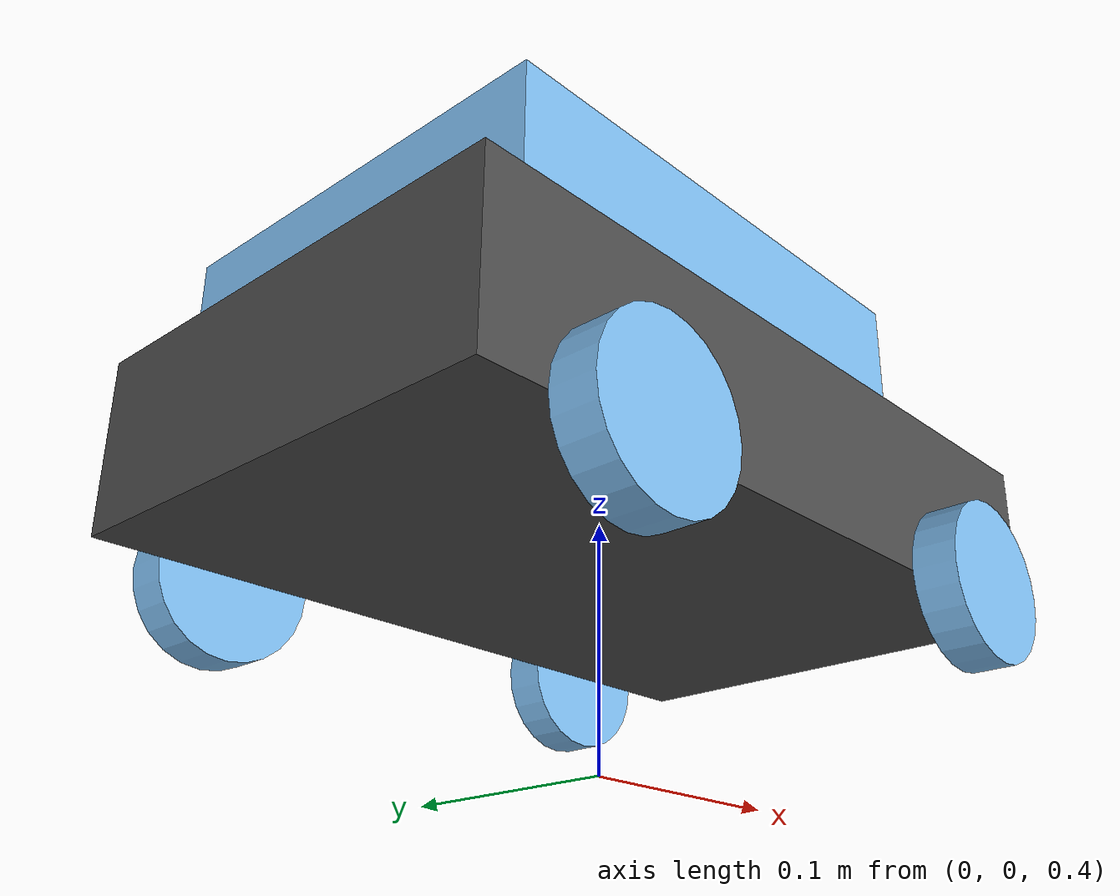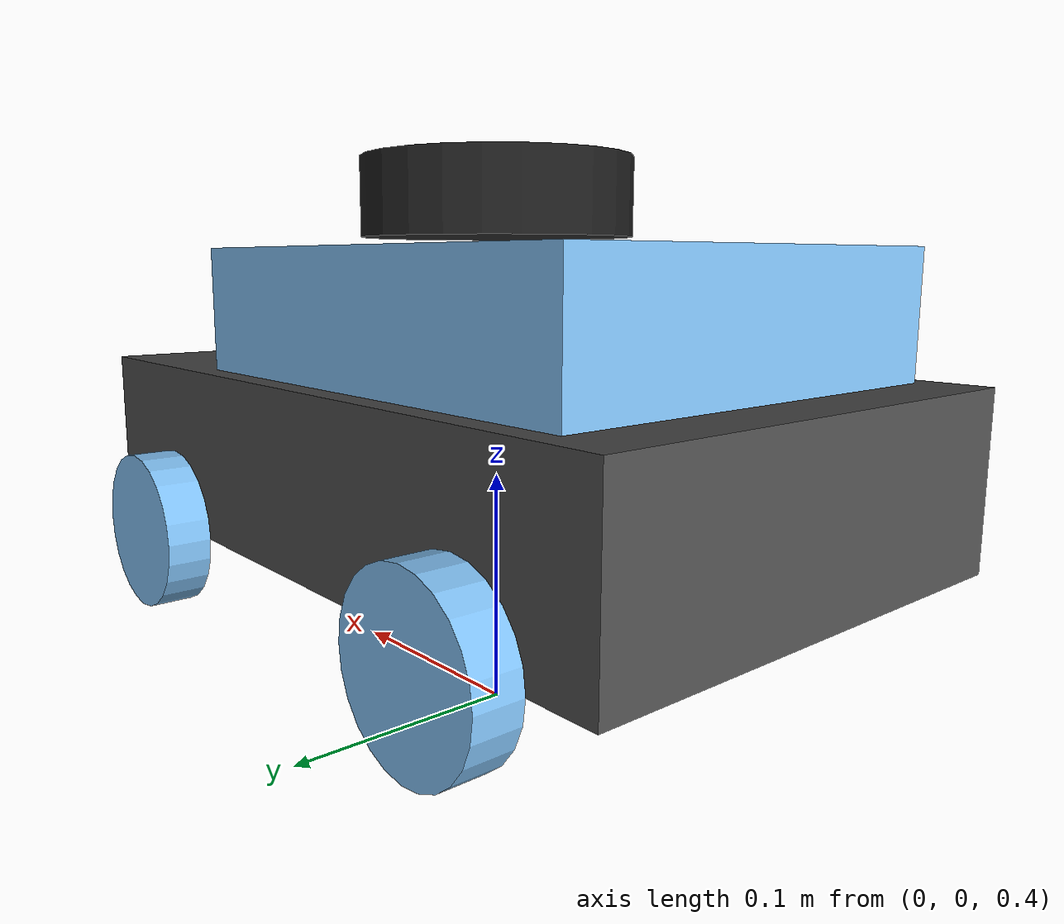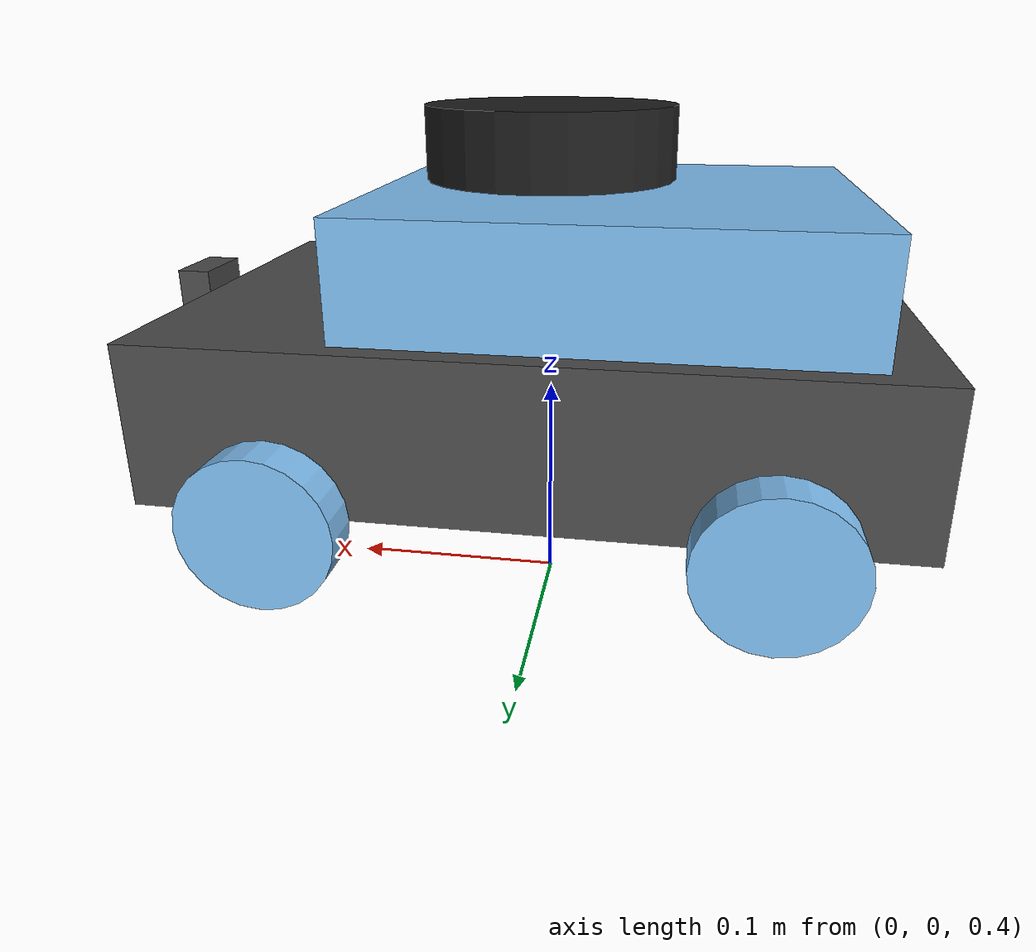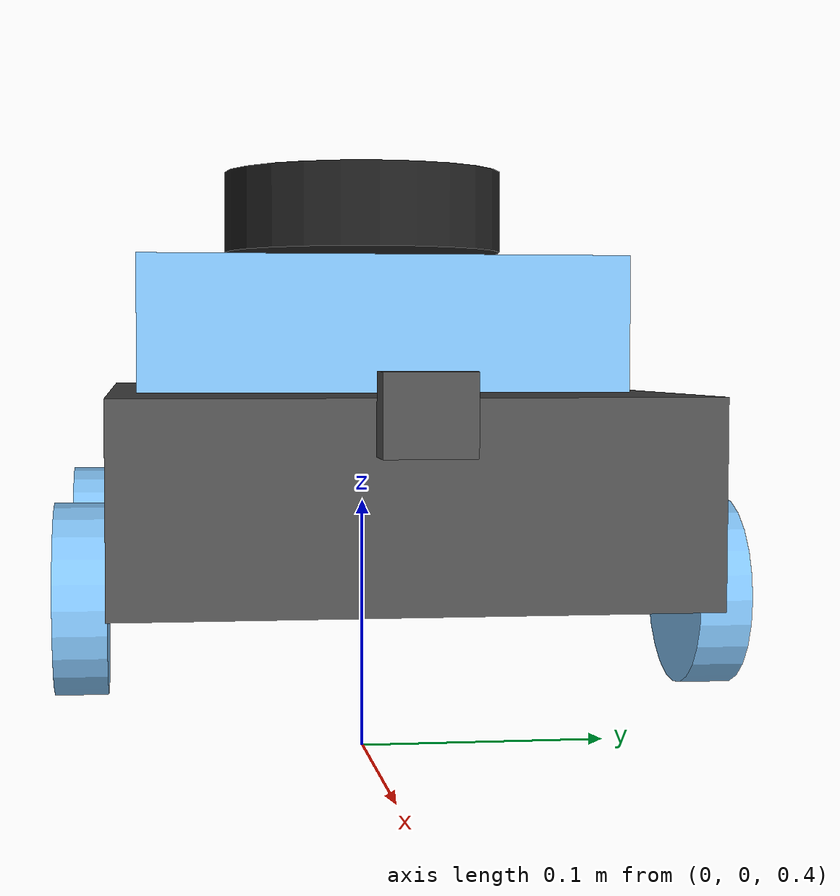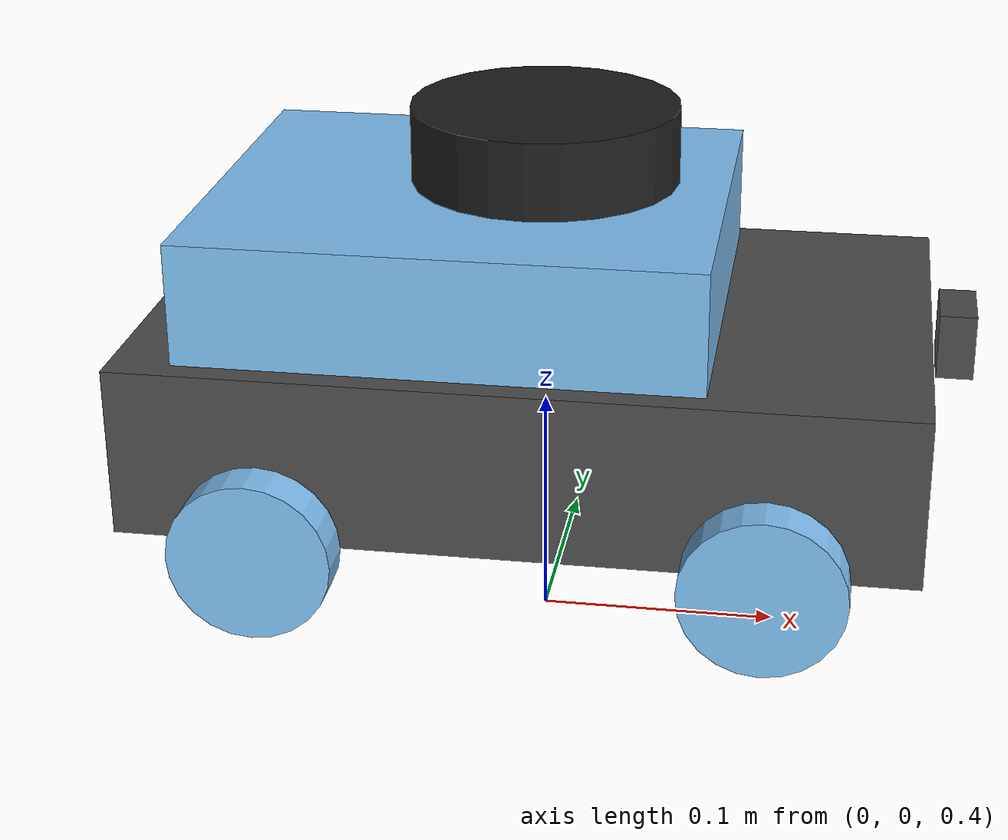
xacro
<?xml version="1.0" ?>
<robot name="fyp_robot" xmlns:xacro="http://www.ros.org/wiki/xacro">
    <xacro:include filename="$(find fyp_project)/urdf/fyp_robot.gazebo.xacro" />

    <link name="base_footprint"/>

    <joint name="base_footprint__base_link" type="fixed">
        <parent link="base_footprint"/>
        <child link="base_link"/>
        <origin xyz="0 0 0.01" rpy ="0 0 0" />
    </joint>

    <link name="base_link">
      <inertial>
        <mass value="1" />
        <origin xyz="0 0 0.5" rpy="0 0 0" />
        <inertia ixx="0.1" ixy="0" ixz="0" iyy="0.1" iyz="0" izz="0.1" />
      </inertial>
      <collision>
        <origin xyz="0 0 0.5" rpy="0 0 0"/>
        <geometry>
          <box size="0.32 0.2 0.07" />
        </geometry>
      </collision>
      <visual>
        <origin xyz="0 0 0.5" rpy="0 0 0" />
        <geometry>
          <box size="0.32 0.2 0.07"/>
        </geometry>
      </visual>
    </link>

    <joint name="base_link__top_chasis" type="fixed">
        <parent link="base_link"/>
        <child link="top_chasis"/>
        <origin xyz="-0.03 0 0.56" rpy ="0 0 0" />
    </joint>

    <link name="top_chasis">
      <inertial>
        <mass value="1" />
        <origin xyz="0 0 0" rpy="0 0 0" />
        <inertia ixx="0.1" ixy="0" ixz="0" iyy="0.1" iyz="0" izz="0.1" />
      </inertial>
      <collision>
        <origin xyz="0 0 0" rpy="0 0 0"/>
        <geometry>
          <box size="0.21 0.18 0.05" />
        </geometry>
      </collision>
      <visual>
        <origin xyz="0 0 0" rpy="0 0 0" />
        <geometry>
          <box size="0.21 0.18 0.05"/>
        </geometry>
      </visual>
    </link>

    <joint name="base_link__backleft_wheel" type="fixed">
        <!--axis xyz="0 1 0"/-->
        <origin rpy="0 0 0" xyz="-0.1 0.109 0.465" />
        <parent link="base_link"/>
        <child link="backleft_wheel_link"/>
    </joint>

    <link name="backleft_wheel_link">
      <inertial>
        <mass value="1" />
        <origin rpy="0 0 0" xyz="0 0 0" />
        <inertia ixx="0.004317" ixy="0" ixz="0" iyy="0.004317" iyz="0" izz="0.0081" />
      </inertial>
      <collision>
        <origin rpy="1.5707 0 0" xyz="0 0 0" />
        <geometry>
          <cylinder length="0.018" radius="0.033" />
        </geometry>
      </collision>
      <visual>
        <origin rpy="1.5707 0 0" xyz="0 0 0" />
        <geometry>
          <cylinder length="0.018" radius="0.033" />
        </geometry>
      </visual>
    </link>

    <joint name="base_link__backright_wheel" type="fixed">
        <!--axis xyz="0 1 0"/-->
        <origin rpy="0 0 0" xyz="-0.1 -0.109 0.465" />
        <parent link="base_link"/>
        <child link="backright_wheel_link"/>
    </joint>

    <link name="backright_wheel_link">
      <inertial>
        <mass value="1" />
        <origin rpy="0 0 0" xyz="0 0 0" />
        <inertia ixx="0.004317" ixy="0" ixz="0" iyy="0.004317" iyz="0" izz="0.0081" />
      </inertial>
      <collision>
        <origin rpy="1.5707 0 0" xyz="0 0 0" />
        <geometry>
          <cylinder length="0.018" radius="0.033" />
        </geometry>
      </collision>
      <visual>
        <origin rpy="1.5707 0 0" xyz="0 0 0" />
        <geometry>
          <cylinder length="0.018" radius="0.033" />
        </geometry>
      </visual>
    </link>

    <joint name="base_link__frontleft_wheel" type="continuous">
        <axis xyz="0 1 0"/>
        <origin rpy="0 0 0" xyz="0.1 0.109 0.465" />
        <parent link="base_link"/>
        <child link="frontleft_wheel_link"/>
    </joint>

    <link name="frontleft_wheel_link">
      <inertial>
        <mass value="1" />
        <origin rpy="0 0 0" xyz="0 0 0" />
        <inertia ixx="0.004317" ixy="0" ixz="0" iyy="0.004317" iyz="0" izz="0.0081" />
      </inertial>
      <collision>
        <origin rpy="1.5707 0 0" xyz="0 0 0" />
        <geometry>
          <cylinder length="0.018" radius="0.033" />
        </geometry>
      </collision>
      <visual>
        <origin rpy="1.5707 0 0" xyz="0 0 0" />
        <geometry>
          <cylinder length="0.018" radius="0.033" />
        </geometry>
      </visual>
    </link>

    <joint name="base_link__frontright_wheel" type="continuous">
        <axis xyz="0 1 0"/>
        <origin rpy="0 0 0" xyz="0.1 -0.109 0.465" />
        <parent link="base_link"/>
        <child link="frontright_wheel_link"/>
    </joint>

    <link name="frontright_wheel_link">
      <inertial>
        <mass value="1" />
        <origin rpy="0 0 0" xyz="0 0 0" />
        <inertia ixx="0.004317" ixy="0" ixz="0" iyy="0.004317" iyz="0" izz="0.0081" />
      </inertial>
      <collision>
        <origin rpy="1.5707 0 0" xyz="0 0 0" />
        <geometry>
          <cylinder length="0.018" radius="0.033" />
        </geometry>
      </collision>
      <visual>
        <origin rpy="1.5707 0 0" xyz="0 0 0" />
        <geometry>
          <cylinder length="0.018" radius="0.033" />
        </geometry>
      </visual>
    </link>

    <joint name="base_link__imu_link" type="fixed">
      <parent link="base_link"/>
      <child link="imu_link"/>
      <origin xyz="0.1 0 0.5" rpy="0 0 0"/>
    </joint>

    <link name="imu_link">
     <visual>
       <origin xyz="0 0 0" rpy="0 0 0"/>
       <geometry>
         <box size="0.001 0.001 0.001"/>
       </geometry>
     </visual>
    </link>

    <joint name="top_chasis__base_scan" type="fixed">
      <parent link="top_chasis"/>
      <child link="base_scan"/>
      <origin xyz="0.03 0 0.045" rpy="0 0 0"/>
    </joint>

    <link name="base_scan">
      <inertial>
        <mass value="0.1" />
        <origin rpy="0 0 0" xyz="0 0 0" />
        <inertia ixx="0.004317" ixy="0" ixz="0" iyy="0.004317" iyz="0" izz="0.0081" />
      </inertial>
      <collision>
        <origin rpy="0 0 0" xyz="0 0 0" />
        <geometry>
          <cylinder length="0.0315" radius="0.055" />
        </geometry>
      </collision>
      <visual>
        <origin rpy="0 0 0" xyz="0 0 0" />
        <geometry>
          <cylinder length="0.0315" radius="0.055" />
        </geometry>
      </visual>
    </link>

  <joint name="base_link__camera_link" type="fixed">
    <origin xyz="0.17 0 0.53" rpy="0 0 0"/>
    <parent link="base_link"/>
    <child link="camera_link"/>
  </joint>

  <link name="camera_link">
    <visual>
      <origin xyz="0.00 0.0 0.0" rpy="0 0 0"/>
      <geometry>
        <box size="0.015 0.030 0.027"/>
      </geometry>
    </visual>
    <collision>
      <origin xyz="0 0 0" rpy="0 0 0"/>
      <geometry>
        <box size="0.015 0.030 0.027"/>
      </geometry>
    </collision>
  </link>

  <joint name="camera_link__camera_rgb_frame" type="fixed">
    <origin xyz="-0.005 0 0.005" rpy="0 0 0"/>
    <parent link="camera_link"/>
    <child link="camera_rgb_frame"/>
  </joint>

  <link name="camera_rgb_frame"/>

  <joint name="camera_rgb_frame__camera_rgb_optical_frame" type="fixed">
    <origin xyz="0 0 0" rpy="-1.57 0 -1.57"/>
    <parent link="camera_rgb_frame"/>
    <child link="camera_rgb_optical_frame"/>
  </joint>

  <link name="camera_rgb_optical_frame"/>

</robot>
